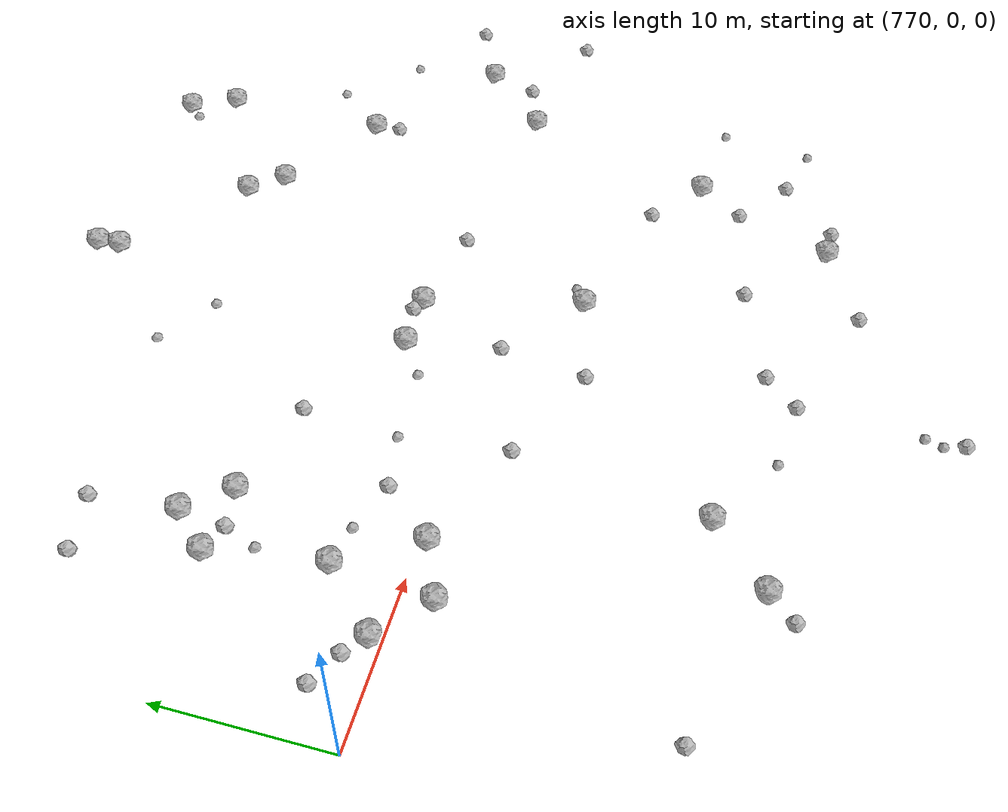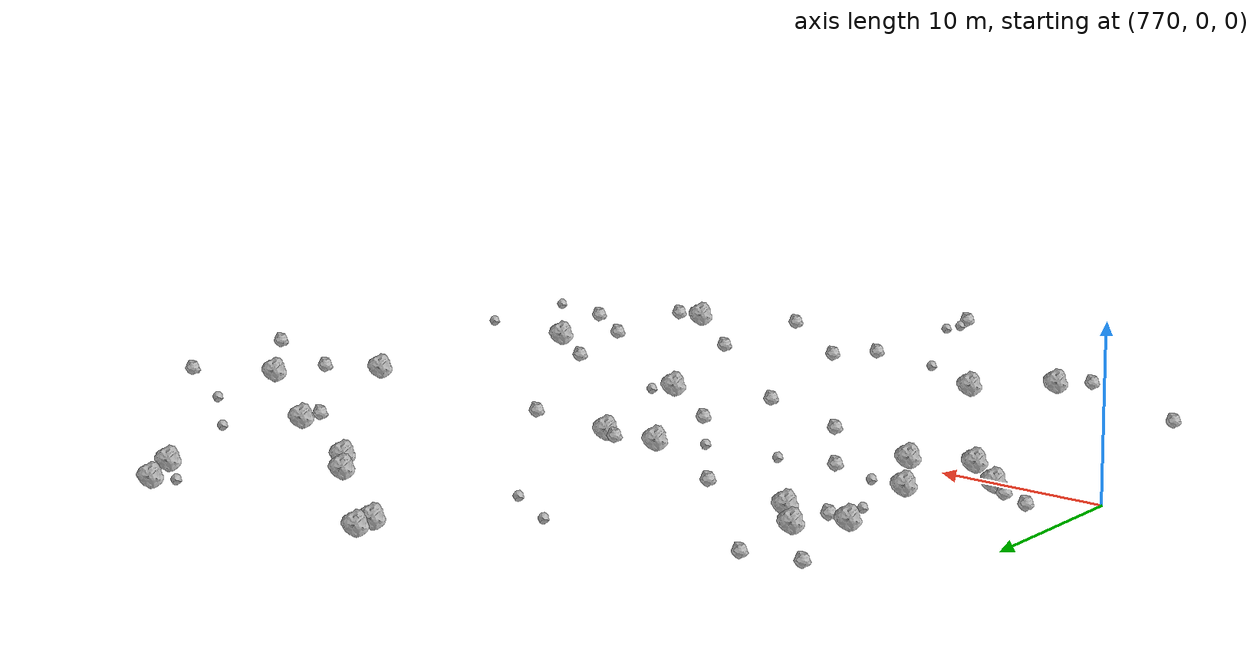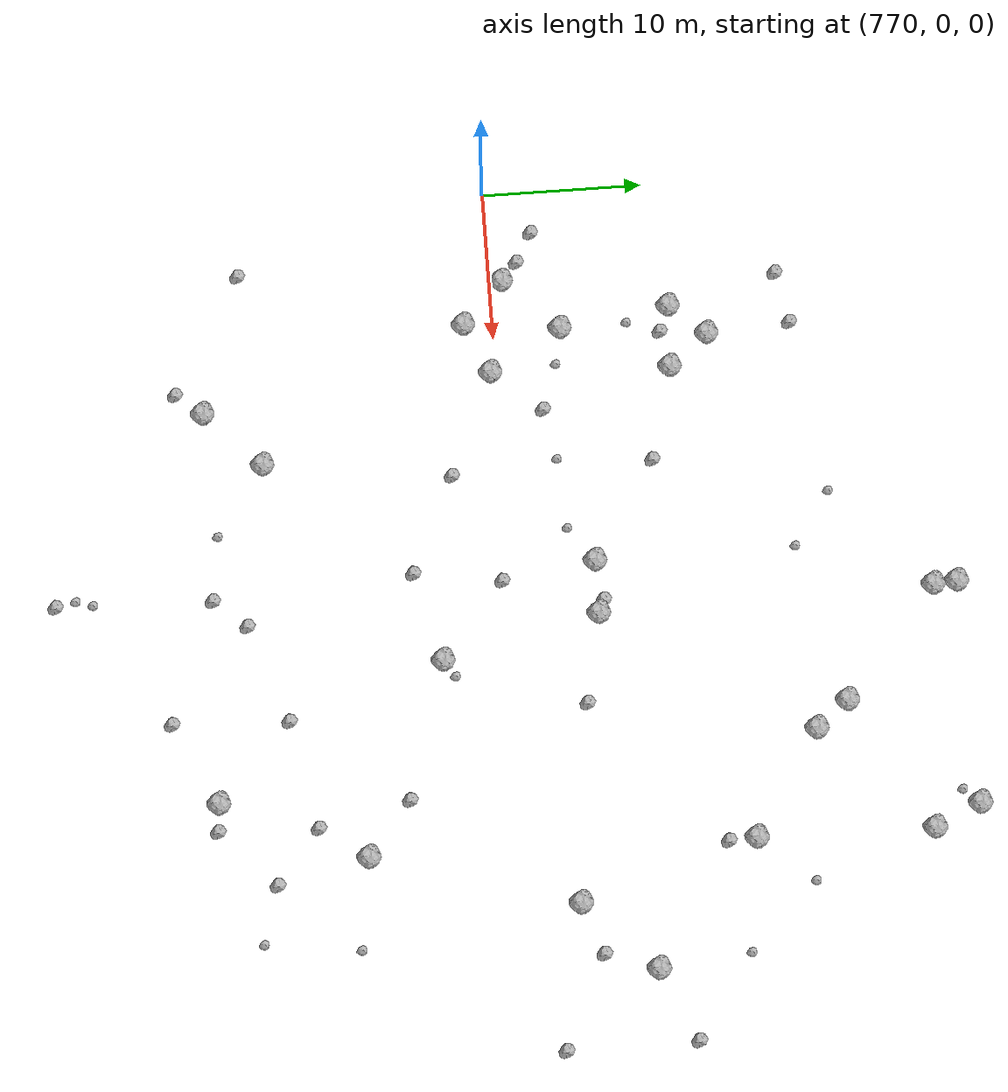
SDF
<sdf version="1.6">
 <world name="default">
  <include><uri>model://sun</uri></include>
  <model name="rock1_20_4">
   <include><uri>model://rock1</uri><pose>799.0898802467507 5.110396776011683 0.5 0 0 0</pose></include>
  </model>
  <model name="rock1_20_5">
   <include><uri>model://rock1</uri><pose>780.7724302424378 13.19120324413813 0.5 0 0 0</pose></include>
  </model>
  <model name="rock1_20_6">
   <include><uri>model://rock1</uri><pose>814.4372631836176 24.13463594447215 0.5 0 0 0</pose></include>
  </model>
  <model name="rock1_20_7">
   <include><uri>model://rock1</uri><pose>778.7172150354385 10.954773241116698 0.5 0 0 0</pose></include>
  </model>
  <model name="rock1_20_8">
   <include><uri>model://rock1</uri><pose>813.9563680568018 -9.785150081093363 0.5 0 0 0</pose></include>
  </model>
  <model name="rock1_20_9">
   <include><uri>model://rock1</uri><pose>787.8064382873986 -14.750766827611256 0.5 0 0 0</pose></include>
  </model>
  <model name="rock1_20_10">
   <include><uri>model://rock1</uri><pose>809.9119889027369 -18.55256697160458 0.5 0 0 0</pose></include>
  </model>
  <model name="rock1_20_11">
   <include><uri>model://rock1</uri><pose>822.1906664606455 6.943822899811927 0.5 0 0 0</pose></include>
  </model>
  <model name="rock1_20_12">
   <include><uri>model://rock1</uri><pose>814.3175585430392 13.436759935094777 0.5 0 0 0</pose></include>
  </model>
  <model name="rock1_20_13">
   <include><uri>model://rock1</uri><pose>817.7395119932962 2.64095579090818 0.5 0 0 0</pose></include>
  </model>
  <model name="rock1_20_14">
   <include><uri>model://rock1</uri><pose>807.55927327742 17.644567813515017 0.5 0 0 0</pose></include>
  </model>
  <model name="rock1_20_15">
   <include><uri>model://rock1</uri><pose>779.7891829750231 4.144106017452636 0.5 0 0 0</pose></include>
  </model>
  <model name="rock1_20_16">
   <include><uri>model://rock1</uri><pose>782.865299427034 10.7434795714056 0.5 0 0 0</pose></include>
  </model>
  <model name="rock1_20_17">
   <include><uri>model://rock1</uri><pose>784.116137124033 -18.248415677632796 0.5 0 0 0</pose></include>
  </model>
  <model name="rock1_20_18">
   <include><uri>model://rock1</uri><pose>776.2884815253345 0.7552768398035248 0.5 0 0 0</pose></include>
  </model>
  <model name="rock1_20_19">
   <include><uri>model://rock1</uri><pose>805.8612885023432 19.65218409906037 0.5 0 0 0</pose></include>
  </model>
  <model name="rock1_20_20">
   <include><uri>model://rock1</uri><pose>813.0435791977939 26.991400049099596 0.5 0 0 0</pose></include>
  </model>
  <model name="rock1_20_21">
   <include><uri>model://rock1</uri><pose>801.5480781301624 -4.52734575329567 0.5 0 0 0</pose></include>
  </model>
  <model name="rock1_20_22">
   <include><uri>model://rock1</uri><pose>798.6278383070372 25.55929321847706 0.5 0 0 0</pose></include>
  </model>
  <model name="rock1_20_23">
   <include><uri>model://rock1</uri><pose>782.5096857608265 -0.35661199555837797 0.5 0 0 0</pose></include>
  </model>
  <model name="rock1_20_24">
   <include><uri>model://rock1</uri><pose>795.6140832863119 5.14430922146866 0.5 0 0 0</pose></include>
  </model>
  <model name="rock1_20_25">
   <include><uri>model://rock1</uri><pose>779.1419457401979 -1.808795068181844 0.5 0 0 0</pose></include>
  </model>
  <model name="rock1_20_26">
   <include><uri>model://rock1</uri><pose>798.5224871944346 27.00624174528906 0.5 0 0 0</pose></include>
  </model>
  <model name="rock2_20_0">
   <include><uri>model://rock2</uri><pose>796.5790090175884 -18.235350067037317 0.3 0 0 0</pose></include>
  </model>
  <model name="rock2_20_1">
   <include><uri>model://rock2</uri><pose>795.6077429021143 -5.952847064131227 0.3 0 0 0</pose></include>
  </model>
  <model name="rock2_20_2">
   <include><uri>model://rock2</uri><pose>804.5000302170534 -21.093540732704106 0.3 0 0 0</pose></include>
  </model>
  <model name="rock2_20_3">
   <include><uri>model://rock2</uri><pose>811.6102272648262 -18.672082686710333 0.3 0 0 0</pose></include>
  </model>
  <model name="rock2_20_4">
   <include><uri>model://rock2</uri><pose>798.390807378469 -16.217598325937303 0.3 0 0 0</pose></include>
  </model>
  <model name="rock2_20_5">
   <include><uri>model://rock2</uri><pose>776.794825575267 17.80117156002617 0.3 0 0 0</pose></include>
  </model>
  <model name="rock2_20_6">
   <include><uri>model://rock2</uri><pose>780.2513671360301 18.407725157772795 0.3 0 0 0</pose></include>
  </model>
  <model name="rock2_20_7">
   <include><uri>model://rock2</uri><pose>826.8587554265207 1.1114636126225044 0.3 0 0 0</pose></include>
  </model>
  <model name="rock2_20_8">
   <include><uri>model://rock2</uri><pose>774.9527591850986 1.7881256614518009 0.3 0 0 0</pose></include>
  </model>
  <model name="rock2_20_9">
   <include><uri>model://rock2</uri><pose>811.8039638554152 -12.647148960036212 0.3 0 0 0</pose></include>
  </model>
  <model name="rock2_20_10">
   <include><uri>model://rock2</uri><pose>796.4640335651723 -0.5714707981889973 0.3 0 0 0</pose></include>
  </model>
  <model name="rock2_20_11">
   <include><uri>model://rock2</uri><pose>788.9939424858649 9.195030706429115 0.3 0 0 0</pose></include>
  </model>
  <model name="rock2_20_12">
   <include><uri>model://rock2</uri><pose>796.3234227427093 -27.79012683312195 0.3 0 0 0</pose></include>
  </model>
  <model name="rock2_20_13">
   <include><uri>model://rock2</uri><pose>774.7238891449344 -15.603945654922635 0.3 0 0 0</pose></include>
  </model>
  <model name="rock2_20_14">
   <include><uri>model://rock2</uri><pose>772.9607317666645 2.820495870524539 0.3 0 0 0</pose></include>
  </model>
  <model name="rock2_20_15">
   <include><uri>model://rock2</uri><pose>814.318055661898 11.77795001829032 0.3 0 0 0</pose></include>
  </model>
  <model name="rock2_20_16">
   <include><uri>model://rock2</uri><pose>804.7733777361082 -14.019191766728472 0.3 0 0 0</pose></include>
  </model>
  <model name="rock2_20_17">
   <include><uri>model://rock2</uri><pose>780.3409729109767 10.341818529437603 0.3 0 0 0</pose></include>
  </model>
  <model name="rock2_20_18">
   <include><uri>model://rock2</uri><pose>804.8416799866225 4.017635457741179 0.3 0 0 0</pose></include>
  </model>
  <model name="rock2_20_19">
   <include><uri>model://rock2</uri><pose>798.1387650893109 5.502315290477213 0.3 0 0 0</pose></include>
  </model>
  <model name="rock2_20_20">
   <include><uri>model://rock2</uri><pose>789.2496867975664 -3.170067222657739 0.3 0 0 0</pose></include>
  </model>
  <model name="rock2_20_21">
   <include><uri>model://rock2</uri><pose>810.3769938557683 -7.078651725885905 0.3 0 0 0</pose></include>
  </model>
  <model name="rock2_20_22">
   <include><uri>model://rock2</uri><pose>815.2648256714267 -15.289434005189609 0.3 0 0 0</pose></include>
  </model>
  <model name="rock2_20_23">
   <include><uri>model://rock2</uri><pose>785.1511897934275 2.7325608851888603 0.3 0 0 0</pose></include>
  </model>
  <model name="rock2_20_24">
   <include><uri>model://rock2</uri><pose>820.9502988458105 3.806569496554218 0.3 0 0 0</pose></include>
  </model>
  <model name="rock2_20_25">
   <include><uri>model://rock2</uri><pose>826.7644209005558 8.971723562661488 0.3 0 0 0</pose></include>
  </model>
  <model name="rock2_20_26">
   <include><uri>model://rock2</uri><pose>782.6039809740757 -19.86446796311217 0.3 0 0 0</pose></include>
  </model>
  <model name="rock3_20_0">
   <include><uri>model://rock3</uri><pose>818.9516293786345 -16.339684651949682 0.2 0 0 0</pose></include>
  </model>
  <model name="rock3_20_1">
   <include><uri>model://rock3</uri><pose>791.8126899245877 19.73420208798784 0.2 0 0 0</pose></include>
  </model>
  <model name="rock3_20_2">
   <include><uri>model://rock3</uri><pose>793.1960702043823 3.5977793837360394 0.2 0 0 0</pose></include>
  </model>
  <model name="rock3_20_3">
   <include><uri>model://rock3</uri><pose>811.9724646972197 26.024804074853925 0.2 0 0 0</pose></include>
  </model>
  <model name="rock3_20_4">
   <include><uri>model://rock3</uri><pose>779.5410237289351 8.275057640990696 0.2 0 0 0</pose></include>
  </model>
  <model name="rock3_20_5">
   <include><uri>model://rock3</uri><pose>802.519239638028 -3.852974508937873 0.2 0 0 0</pose></include>
  </model>
  <model name="rock3_20_6">
   <include><uri>model://rock3</uri><pose>795.3545255364883 17.404888395360828 0.2 0 0 0</pose></include>
  </model>
  <model name="rock3_20_7">
   <include><uri>model://rock3</uri><pose>788.5220027129051 3.3026883647931413 0.2 0 0 0</pose></include>
  </model>
  <model name="rock3_20_8">
   <include><uri>model://rock3</uri><pose>796.3251784673415 -25.564054171278087 0.2 0 0 0</pose></include>
  </model>
  <model name="rock3_20_9">
   <include><uri>model://rock3</uri><pose>792.2901659640202 -17.756666959095742 0.2 0 0 0</pose></include>
  </model>
  <model name="rock3_20_10">
   <include><uri>model://rock3</uri><pose>817.1788501220882 16.731520610623903 0.2 0 0 0</pose></include>
  </model>
  <model name="rock3_20_11">
   <include><uri>model://rock3</uri><pose>819.6986241699599 -10.573125922511291 0.2 0 0 0</pose></include>
  </model>
  <model name="rock3_20_12">
   <include><uri>model://rock3</uri><pose>796.0020591219197 -26.606637515269362 0.2 0 0 0</pose></include>
  </model>
  <model name="rock3_20_13">
   <include><uri>model://rock3</uri><pose>782.0831149645402 3.6974053626576477 0.2 0 0 0</pose></include>
  </model>
  <model name="rock3_20_14">
   <include><uri>model://rock3</uri><pose>821.4372166533127 12.511248203218322 0.2 0 0 0</pose></include>
  </model>
 </world>
</sdf>
